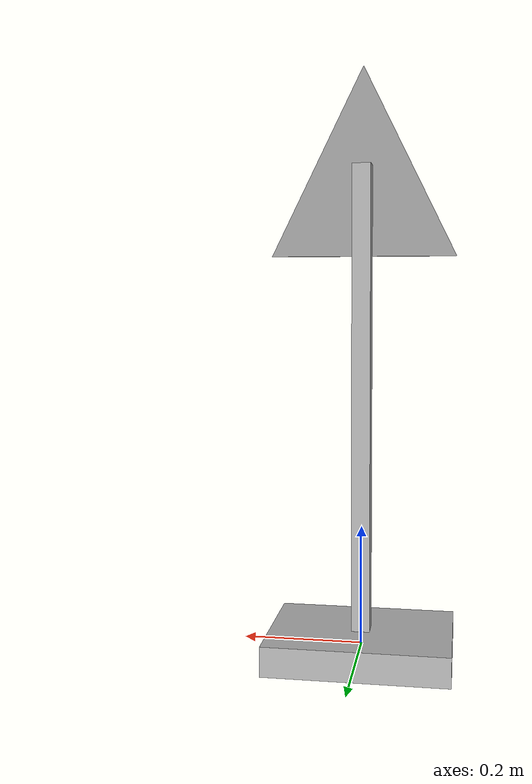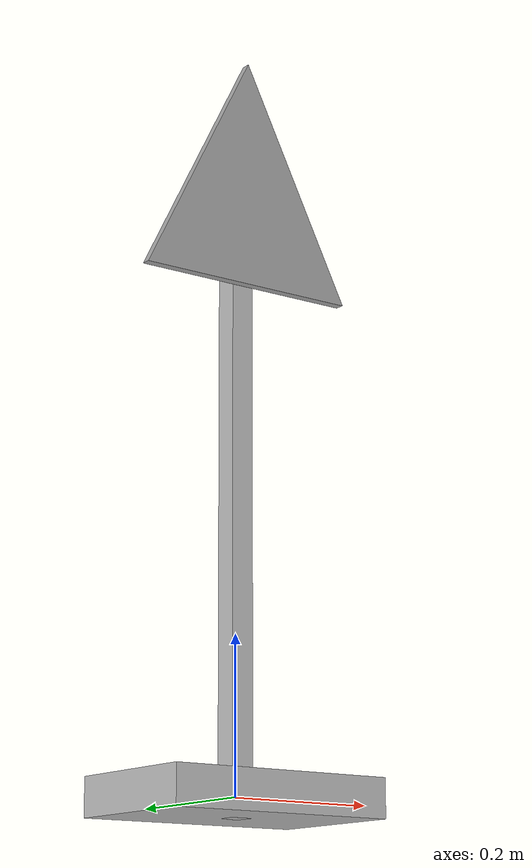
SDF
<?xml version="1.0"?>
<sdf version="1.4">
<model name="Other_Dangers_signal">
  <link name="support_structure">
    <pose>0 0 0 0 0 0</pose>
    <visual name="base">
      <geometry>
        <box>
          <size>0.305 0.2 0.05</size>
        </box>
      </geometry>
    </visual>
    <collision name="base">
      <geometry>
        <box>
          <size>0.305 0.2 0.05</size>
        </box>
      </geometry>
    </collision>
    <visual name="vertical_post">
    <pose>0 0 0.385 0 0 0</pose>
      <geometry>
        <box>
          <size>0.0305 0.0305 0.82</size>
        </box>
      </geometry>
    </visual>
    <collision name="vertical_post">
    <pose>0 0 0.385 0 0 0</pose>
      <geometry>
        <box>
          <size>0.0305 0.0305 0.82</size>
        </box>
      </geometry>
    </collision>
  </link>
  <joint name="postAndPictogram" type="revolute">
      <parent>support_structure</parent>
      <child>pictogram</child>
      <axis>
        <xyz>0 0 1</xyz>
        <limit>
            <upper>0</upper>
            <lower>0</lower>
        </limit>
      </axis>
    </joint>
  <link name="pictogram">
    <pose>0 -0.0225 0.75 0 0 0</pose>
    <visual name="pictogram">
        <geometry>
            <mesh>
                <uri>model://OtherDangersSignal/signal.dae</uri>
            </mesh>
        </geometry>
        <material>
          <script>
            <uri>model://OtherDangersSignal/materials/scripts</uri>
            <uri>model://OtherDangersSignal/materials/textures</uri>
            <name>Signal/OtherDangers</name>
          </script>
        </material>
    </visual>
  </link>
</model>
</sdf>
